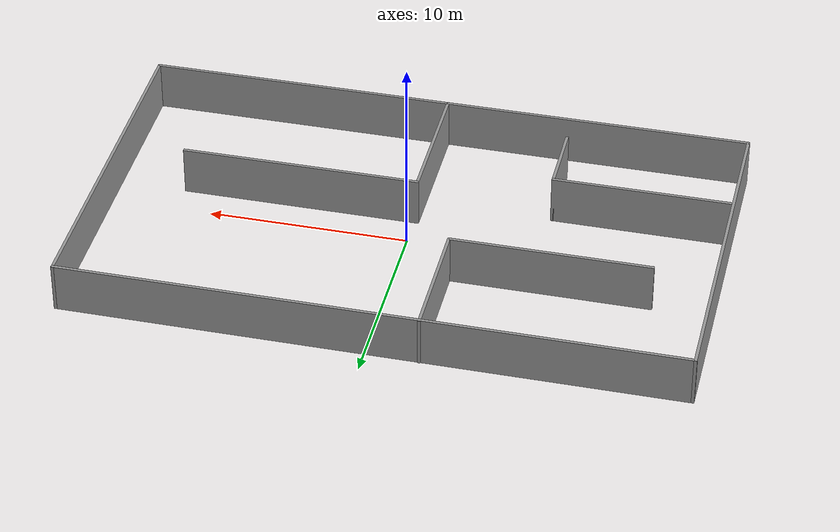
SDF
<?xml version='1.0'?>
<sdf version='1.7'>
  <model name='room'>
    <pose>-0.184512 0.162434 0 0 -0 0</pose>
    <link name='Wall_10'>
      <collision name='Wall_10_Collision'>
        <geometry>
          <box>
            <size>6.5 0.15 2.5</size>
          </box>
        </geometry>
        <pose>0 0 1.25 0 -0 0</pose>
      </collision>
      <visual name='Wall_10_Visual'>
        <pose>0 0 1.25 0 -0 0</pose>
        <geometry>
          <box>
            <size>6.5 0.15 2.5</size>
          </box>
        </geometry>
        <material>
          <script>
            <uri>file://media/materials/scripts/gazebo.material</uri>
            <name>Gazebo/Grey</name>
          </script>
          <ambient>1 1 1 1</ambient>
        </material>
        <meta>
          <layer>0</layer>
        </meta>
      </visual>
      <pose>-2.45272 5.51867 0 0 -0 -1.5708</pose>
    </link>
    <link name='Wall_11'>
      <collision name='Wall_11_Collision'>
        <geometry>
          <box>
            <size>10 0.15 2.5</size>
          </box>
        </geometry>
        <pose>0 0 1.25 0 -0 0</pose>
      </collision>
      <visual name='Wall_11_Visual'>
        <pose>0 0 1.25 0 -0 0</pose>
        <geometry>
          <box>
            <size>10 0.15 2.5</size>
          </box>
        </geometry>
        <material>
          <script>
            <uri>file://media/materials/scripts/gazebo.material</uri>
            <name>Gazebo/Grey</name>
          </script>
          <ambient>1 1 1 1</ambient>
        </material>
        <meta>
          <layer>0</layer>
        </meta>
      </visual>
      <pose>-7.37772 2.34367 0 0 -0 3.14159</pose>
    </link>
    <link name='Wall_13'>
      <collision name='Wall_13_Collision'>
        <geometry>
          <box>
            <size>9 0.15 2.5</size>
          </box>
        </geometry>
        <pose>0 0 1.25 0 -0 0</pose>
      </collision>
      <visual name='Wall_13_Visual'>
        <pose>0 0 1.25 0 -0 0</pose>
        <geometry>
          <box>
            <size>9 0.15 2.5</size>
          </box>
        </geometry>
        <material>
          <script>
            <uri>file://media/materials/scripts/gazebo.material</uri>
            <name>Gazebo/Grey</name>
          </script>
          <ambient>1 1 1 1</ambient>
        </material>
        <meta>
          <layer>0</layer>
        </meta>
      </visual>
      <pose>-10.8329 -3.50199 0 0 -0 0</pose>
    </link>
    <link name='Wall_14'>
      <collision name='Wall_14_Collision'>
        <geometry>
          <box>
            <size>3.75 0.15 2.5</size>
          </box>
        </geometry>
        <pose>0 0 1.25 0 -0 0</pose>
      </collision>
      <visual name='Wall_14_Visual'>
        <pose>0 0 1.25 0 -0 0</pose>
        <geometry>
          <box>
            <size>3.75 0.15 2.5</size>
          </box>
        </geometry>
        <material>
          <script>
            <uri>file://media/materials/scripts/gazebo.material</uri>
            <name>Gazebo/Grey</name>
          </script>
          <ambient>1 1 1 1</ambient>
        </material>
        <meta>
          <layer>0</layer>
        </meta>
      </visual>
      <pose>-6.40785 -5.30199 0 0 -0 -1.5708</pose>
    </link>
    <link name='Wall_16'>
      <collision name='Wall_16_Collision'>
        <geometry>
          <box>
            <size>7 0.15 2.5</size>
          </box>
        </geometry>
        <pose>0 0 1.25 0 -0 0</pose>
      </collision>
      <visual name='Wall_16_Visual'>
        <pose>0 0 1.25 0 -0 0</pose>
        <geometry>
          <box>
            <size>7 0.15 2.5</size>
          </box>
        </geometry>
        <material>
          <script>
            <uri>file://media/materials/scripts/gazebo.material</uri>
            <name>Gazebo/Grey</name>
          </script>
          <ambient>1 1 1 1</ambient>
        </material>
        <meta>
          <layer>0</layer>
        </meta>
      </visual>
      <pose>0.034359 -5.21485 0 0 -0 1.5708</pose>
    </link>
    <link name='Wall_17'>
      <collision name='Wall_17_Collision'>
        <geometry>
          <box>
            <size>12 0.15 2.5</size>
          </box>
        </geometry>
        <pose>0 0 1.25 0 -0 0</pose>
      </collision>
      <visual name='Wall_17_Visual'>
        <pose>0 0 1.25 0 -0 0</pose>
        <geometry>
          <box>
            <size>12 0.15 2.5</size>
          </box>
        </geometry>
        <material>
          <script>
            <uri>file://media/materials/scripts/gazebo.material</uri>
            <name>Gazebo/Grey</name>
          </script>
          <ambient>1 1 1 1</ambient>
        </material>
        <meta>
          <layer>0</layer>
        </meta>
      </visual>
      <pose>5.95936 -1.78985 0 0 -0 0</pose>
    </link>
    <link name='Wall_2'>
      <collision name='Wall_2_Collision'>
        <geometry>
          <box>
            <size>17.5 0.15 2.5</size>
          </box>
        </geometry>
        <pose>0 0 1.25 0 -0 0</pose>
      </collision>
      <visual name='Wall_2_Visual'>
        <pose>0 0 1.25 0 -0 0</pose>
        <geometry>
          <box>
            <size>17.5 0.15 2.5</size>
          </box>
        </geometry>
        <material>
          <script>
            <uri>file://media/materials/scripts/gazebo.material</uri>
            <name>Gazebo/Grey</name>
          </script>
          <ambient>1 1 1 1</ambient>
        </material>
        <meta>
          <layer>0</layer>
        </meta>
      </visual>
      <pose>-15.3 -0.018665 0 0 -0 -1.5708</pose>
    </link>
    <link name='Wall_4'>
      <collision name='Wall_4_Collision'>
        <geometry>
          <box>
            <size>30.75 0.15 2.5</size>
          </box>
        </geometry>
        <pose>0 0 1.25 0 -0 0</pose>
      </collision>
      <visual name='Wall_4_Visual'>
        <pose>0 0 1.25 0 -0 0</pose>
        <geometry>
          <box>
            <size>30.75 0.15 2.5</size>
          </box>
        </geometry>
        <material>
          <script>
            <uri>file://media/materials/scripts/gazebo.material</uri>
            <name>Gazebo/Grey</name>
          </script>
          <ambient>1 1 1 1</ambient>
        </material>
        <meta>
          <layer>0</layer>
        </meta>
      </visual>
      <pose>-0 8.65633 0 0 -0 0</pose>
    </link>
    <link name='Wall_5'>
      <collision name='Wall_5_Collision'>
        <geometry>
          <box>
            <size>17.5 0.15 2.5</size>
          </box>
        </geometry>
        <pose>0 0 1.25 0 -0 0</pose>
      </collision>
      <visual name='Wall_5_Visual'>
        <pose>0 0 1.25 0 -0 0</pose>
        <geometry>
          <box>
            <size>17.5 0.15 2.5</size>
          </box>
        </geometry>
        <material>
          <script>
            <uri>file://media/materials/scripts/gazebo.material</uri>
            <name>Gazebo/Grey</name>
          </script>
          <ambient>1 1 1 1</ambient>
        </material>
        <meta>
          <layer>0</layer>
        </meta>
      </visual>
      <pose>15.3 -0.018665 0 0 -0 -1.5708</pose>
    </link>
    <link name='Wall_6'>
      <collision name='Wall_6_Collision'>
        <geometry>
          <box>
            <size>30.75 0.15 2.5</size>
          </box>
        </geometry>
        <pose>0 0 1.25 0 -0 0</pose>
      </collision>
      <visual name='Wall_6_Visual'>
        <pose>0 0 1.25 0 -0 0</pose>
        <geometry>
          <box>
            <size>30.75 0.15 2.5</size>
          </box>
        </geometry>
        <material>
          <script>
            <uri>file://media/materials/scripts/gazebo.material</uri>
            <name>Gazebo/Grey</name>
          </script>
          <ambient>1 1 1 1</ambient>
        </material>
        <meta>
          <layer>0</layer>
        </meta>
      </visual>
      <pose>-0 -8.69366 0 0 -0 3.14159</pose>
    </link>
    <static>1</static>
  </model>
</sdf>
